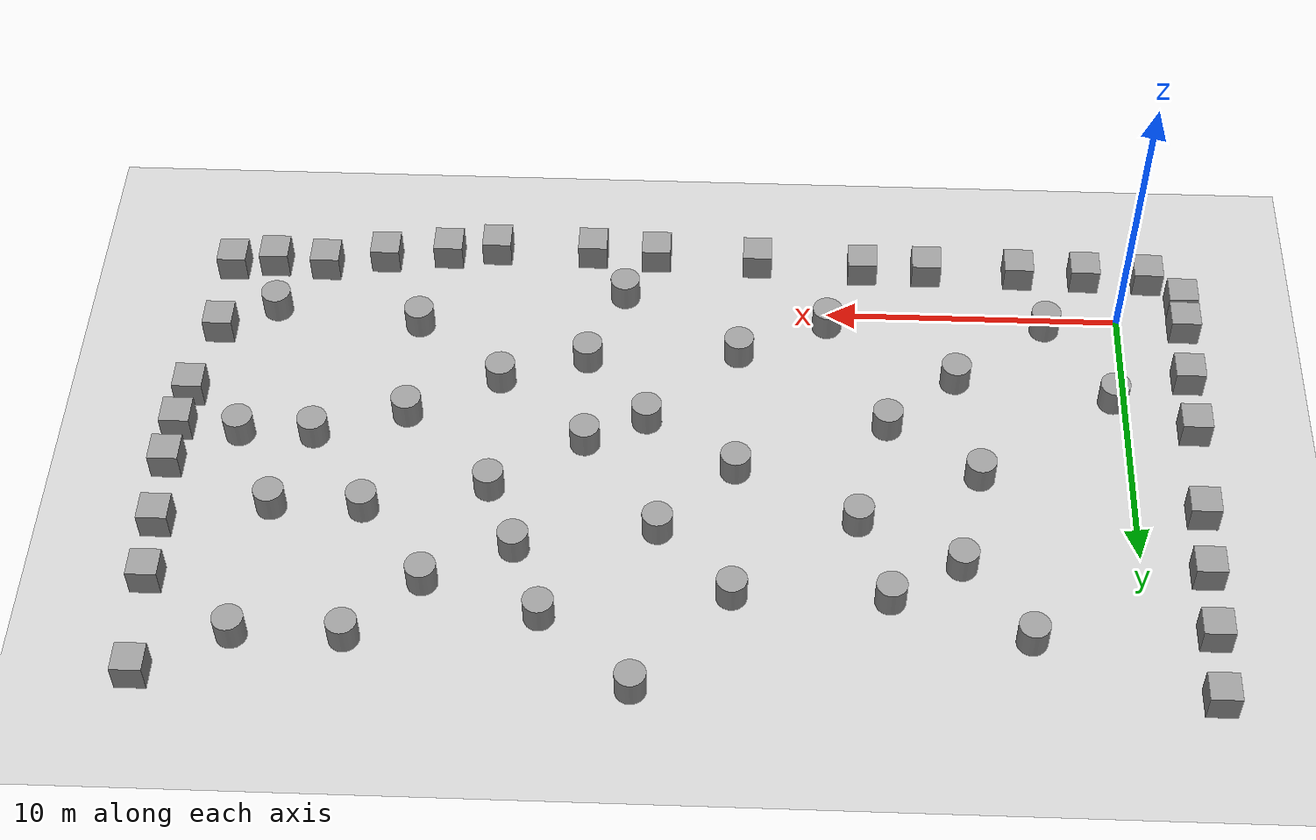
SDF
<sdf version="1.7">
 <world name="default">
  <model name="ground_plane">
   <static>1</static>
   <link name="link">
    <collision name="collision">
     <geometry><plane><normal>0 0 1</normal><size>100 100</size></plane></geometry>
     <surface><friction><ode><mu>100</mu><mu2>50</mu2></ode></friction></surface>
    </collision>
    <visual name="visual">
     <cast_shadows>0</cast_shadows>
     <geometry><plane><normal>0 0 1</normal><size>100 100</size></plane></geometry>
     <material>
      <script><uri>file://media/materials/scripts/gazebo.material</uri><name>Gazebo/Grey</name></script>
     </material>
    </visual>
   </link>
  </model>
  <model name="unit_box_0">
   <pose>-2.22865 0.326049 0.5 -0 -0 -0</pose>
   <link name="link">
    <inertial>
     <mass>1</mass>
     <inertia>
      <ixx>0.166667</ixx>
      <ixy>0</ixy>
      <ixz>0</ixz>
      <iyy>0.166667</iyy>
      <iyz>0</iyz>
      <izz>0.166667</izz>
     </inertia>
    </inertial>
    <collision name="collision"><geometry><box><size>1 1 1</size></box></geometry></collision>
    <visual name="visual">
     <geometry><box><size>1 1 1</size></box></geometry>
     <material>
      <script><name>Gazebo/Grey</name><uri>file://media/materials/scripts/gazebo.material</uri></script>
     </material>
    </visual>
   </link>
  </model>
  <model name="unit_box_0_clone_0">
   <pose>-2.16445 2.63677 0.5 0 -0 0</pose>
   <link name="link">
    <inertial>
     <mass>1</mass>
     <inertia>
      <ixx>0.166667</ixx>
      <ixy>0</ixy>
      <ixz>0</ixz>
      <iyy>0.166667</iyy>
      <iyz>0</iyz>
      <izz>0.166667</izz>
     </inertia>
    </inertial>
    <collision name="collision"><geometry><box><size>1 1 1</size></box></geometry></collision>
    <visual name="visual">
     <geometry><box><size>1 1 1</size></box></geometry>
     <material>
      <script><name>Gazebo/Grey</name><uri>file://media/materials/scripts/gazebo.material</uri></script>
     </material>
    </visual>
   </link>
  </model>
  <model name="unit_box_0_clone_2">
   <pose>-2.17584 4.83845 0.5 0 -0 0</pose>
   <link name="link">
    <inertial>
     <mass>1</mass>
     <inertia>
      <ixx>0.166667</ixx>
      <ixy>0</ixy>
      <ixz>0</ixz>
      <iyy>0.166667</iyy>
      <iyz>0</iyz>
      <izz>0.166667</izz>
     </inertia>
    </inertial>
    <collision name="collision"><geometry><box><size>1 1 1</size></box></geometry></collision>
    <visual name="visual">
     <geometry><box><size>1 1 1</size></box></geometry>
     <material>
      <script><name>Gazebo/Grey</name><uri>file://media/materials/scripts/gazebo.material</uri></script>
     </material>
    </visual>
   </link>
  </model>
  <model name="unit_box_0_clone_5">
   <pose>-2.11196 8.30155 0.5 0 -0 0</pose>
   <link name="link">
    <inertial>
     <mass>1</mass>
     <inertia>
      <ixx>0.166667</ixx>
      <ixy>0</ixy>
      <ixz>0</ixz>
      <iyy>0.166667</iyy>
      <iyz>0</iyz>
      <izz>0.166667</izz>
     </inertia>
    </inertial>
    <collision name="collision"><geometry><box><size>1 1 1</size></box></geometry></collision>
    <visual name="visual">
     <geometry><box><size>1 1 1</size></box></geometry>
     <material>
      <script><name>Gazebo/Grey</name><uri>file://media/materials/scripts/gazebo.material</uri></script>
     </material>
    </visual>
   </link>
  </model>
  <model name="unit_box_0_clone_7">
   <pose>-2.03622 10.6755 0.5 0 -0 0</pose>
   <link name="link">
    <inertial>
     <mass>1</mass>
     <inertia>
      <ixx>0.166667</ixx>
      <ixy>0</ixy>
      <ixz>0</ixz>
      <iyy>0.166667</iyy>
      <iyz>0</iyz>
      <izz>0.166667</izz>
     </inertia>
    </inertial>
    <collision name="collision"><geometry><box><size>1 1 1</size></box></geometry></collision>
    <visual name="visual">
     <geometry><box><size>1 1 1</size></box></geometry>
     <material>
      <script><name>Gazebo/Grey</name><uri>file://media/materials/scripts/gazebo.material</uri></script>
     </material>
    </visual>
   </link>
  </model>
  <model name="unit_box_0_clone_9">
   <pose>-2.03088 13.0171 0.5 0 -0 0</pose>
   <link name="link">
    <inertial>
     <mass>1</mass>
     <inertia>
      <ixx>0.166667</ixx>
      <ixy>0</ixy>
      <ixz>0</ixz>
      <iyy>0.166667</iyy>
      <iyz>0</iyz>
      <izz>0.166667</izz>
     </inertia>
    </inertial>
    <collision name="collision"><geometry><box><size>1 1 1</size></box></geometry></collision>
    <visual name="visual">
     <geometry><box><size>1 1 1</size></box></geometry>
     <material>
      <script><name>Gazebo/Grey</name><uri>file://media/materials/scripts/gazebo.material</uri></script>
     </material>
    </visual>
   </link>
  </model>
  <model name="unit_box_0_clone_11">
   <pose>-1.97332 15.4004 0.5 0 -0 0</pose>
   <link name="link">
    <inertial>
     <mass>1</mass>
     <inertia>
      <ixx>0.166667</ixx>
      <ixy>0</ixy>
      <ixz>0</ixz>
      <iyy>0.166667</iyy>
      <iyz>0</iyz>
      <izz>0.166667</izz>
     </inertia>
    </inertial>
    <collision name="collision"><geometry><box><size>1 1 1</size></box></geometry></collision>
    <visual name="visual">
     <geometry><box><size>1 1 1</size></box></geometry>
     <material>
      <script><name>Gazebo/Grey</name><uri>file://media/materials/scripts/gazebo.material</uri></script>
     </material>
    </visual>
   </link>
  </model>
  <model name="unit_box_0_clone_22">
   <pose>-2.24379 -0.772102 0.5 0 -0 0</pose>
   <link name="link">
    <inertial>
     <mass>1</mass>
     <inertia>
      <ixx>0.166667</ixx>
      <ixy>0</ixy>
      <ixz>0</ixz>
      <iyy>0.166667</iyy>
      <iyz>0</iyz>
      <izz>0.166667</izz>
     </inertia>
    </inertial>
    <collision name="collision"><geometry><box><size>1 1 1</size></box></geometry></collision>
    <visual name="visual">
     <geometry><box><size>1 1 1</size></box></geometry>
     <material>
      <script><name>Gazebo/Grey</name><uri>file://media/materials/scripts/gazebo.material</uri></script>
     </material>
    </visual>
   </link>
  </model>
  <model name="unit_box_0_clone_23">
   <pose>-1.13961 -1.85818 0.5 0 -0 0</pose>
   <link name="link">
    <inertial>
     <mass>1</mass>
     <inertia>
      <ixx>0.166667</ixx>
      <ixy>0</ixy>
      <ixz>0</ixz>
      <iyy>0.166667</iyy>
      <iyz>0</iyz>
      <izz>0.166667</izz>
     </inertia>
    </inertial>
    <collision name="collision"><geometry><box><size>1 1 1</size></box></geometry></collision>
    <visual name="visual">
     <geometry><box><size>1 1 1</size></box></geometry>
     <material>
      <script><name>Gazebo/Grey</name><uri>file://media/materials/scripts/gazebo.material</uri></script>
     </material>
    </visual>
   </link>
  </model>
  <model name="unit_box_0_clone_25">
   <pose>1.04752 -1.90962 0.5 0 -0 0</pose>
   <link name="link">
    <inertial>
     <mass>1</mass>
     <inertia>
      <ixx>0.166667</ixx>
      <ixy>0</ixy>
      <ixz>0</ixz>
      <iyy>0.166667</iyy>
      <iyz>0</iyz>
      <izz>0.166667</izz>
     </inertia>
    </inertial>
    <collision name="collision"><geometry><box><size>1 1 1</size></box></geometry></collision>
    <visual name="visual">
     <geometry><box><size>1 1 1</size></box></geometry>
     <material>
      <script><name>Gazebo/Grey</name><uri>file://media/materials/scripts/gazebo.material</uri></script>
     </material>
    </visual>
   </link>
  </model>
  <model name="unit_box_0_clone_27">
   <pose>3.34569 -1.94663 0.5 0 -0 0</pose>
   <link name="link">
    <inertial>
     <mass>1</mass>
     <inertia>
      <ixx>0.166667</ixx>
      <ixy>0</ixy>
      <ixz>0</ixz>
      <iyy>0.166667</iyy>
      <iyz>0</iyz>
      <izz>0.166667</izz>
     </inertia>
    </inertial>
    <collision name="collision"><geometry><box><size>1 1 1</size></box></geometry></collision>
    <visual name="visual">
     <geometry><box><size>1 1 1</size></box></geometry>
     <material>
      <script><name>Gazebo/Grey</name><uri>file://media/materials/scripts/gazebo.material</uri></script>
     </material>
    </visual>
   </link>
  </model>
  <model name="unit_box_0_clone_27_clone_1">
   <pose>6.55096 -1.97487 0.5 0 -0 0</pose>
   <link name="link">
    <inertial>
     <mass>1</mass>
     <inertia>
      <ixx>0.166667</ixx>
      <ixy>0</ixy>
      <ixz>0</ixz>
      <iyy>0.166667</iyy>
      <iyz>0</iyz>
      <izz>0.166667</izz>
     </inertia>
    </inertial>
    <collision name="collision"><geometry><box><size>1 1 1</size></box></geometry></collision>
    <visual name="visual">
     <geometry><box><size>1 1 1</size></box></geometry>
     <material>
      <script><name>Gazebo/Grey</name><uri>file://media/materials/scripts/gazebo.material</uri></script>
     </material>
    </visual>
   </link>
  </model>
  <model name="unit_box_0_clone_27_clone_3">
   <pose>8.77506 -1.97155 0.5 0 -0 0</pose>
   <link name="link">
    <inertial>
     <mass>1</mass>
     <inertia>
      <ixx>0.166667</ixx>
      <ixy>0</ixy>
      <ixz>0</ixz>
      <iyy>0.166667</iyy>
      <iyz>0</iyz>
      <izz>0.166667</izz>
     </inertia>
    </inertial>
    <collision name="collision"><geometry><box><size>1 1 1</size></box></geometry></collision>
    <visual name="visual">
     <geometry><box><size>1 1 1</size></box></geometry>
     <material>
      <script><name>Gazebo/Grey</name><uri>file://media/materials/scripts/gazebo.material</uri></script>
     </material>
    </visual>
   </link>
  </model>
  <model name="unit_box_0_clone_27_clone_6">
   <pose>12.4447 -2.18446 0.5 0 -0 0</pose>
   <link name="link">
    <inertial>
     <mass>1</mass>
     <inertia>
      <ixx>0.166667</ixx>
      <ixy>0</ixy>
      <ixz>0</ixz>
      <iyy>0.166667</iyy>
      <iyz>0</iyz>
      <izz>0.166667</izz>
     </inertia>
    </inertial>
    <collision name="collision"><geometry><box><size>1 1 1</size></box></geometry></collision>
    <visual name="visual">
     <geometry><box><size>1 1 1</size></box></geometry>
     <material>
      <script><name>Gazebo/Grey</name><uri>file://media/materials/scripts/gazebo.material</uri></script>
     </material>
    </visual>
   </link>
  </model>
  <model name="unit_box_0_clone_27_clone_9">
   <pose>15.99 -2.33679 0.5 0 -0 0</pose>
   <link name="link">
    <inertial>
     <mass>1</mass>
     <inertia>
      <ixx>0.166667</ixx>
      <ixy>0</ixy>
      <ixz>0</ixz>
      <iyy>0.166667</iyy>
      <iyz>0</iyz>
      <izz>0.166667</izz>
     </inertia>
    </inertial>
    <collision name="collision"><geometry><box><size>1 1 1</size></box></geometry></collision>
    <visual name="visual">
     <geometry><box><size>1 1 1</size></box></geometry>
     <material>
      <script><name>Gazebo/Grey</name><uri>file://media/materials/scripts/gazebo.material</uri></script>
     </material>
    </visual>
   </link>
  </model>
  <model name="unit_box_0_clone_27_clone_11">
   <pose>18.2224 -2.44772 0.5 0 -0 0</pose>
   <link name="link">
    <inertial>
     <mass>1</mass>
     <inertia>
      <ixx>0.166667</ixx>
      <ixy>0</ixy>
      <ixz>0</ixz>
      <iyy>0.166667</iyy>
      <iyz>0</iyz>
      <izz>0.166667</izz>
     </inertia>
    </inertial>
    <collision name="collision"><geometry><box><size>1 1 1</size></box></geometry></collision>
    <visual name="visual">
     <geometry><box><size>1 1 1</size></box></geometry>
     <material>
      <script><name>Gazebo/Grey</name><uri>file://media/materials/scripts/gazebo.material</uri></script>
     </material>
    </visual>
   </link>
  </model>
  <model name="unit_box_11">
   <pose>21.5967 -2.48668 0.5 -0 -0 -0</pose>
   <link name="link">
    <inertial>
     <mass>1</mass>
     <inertia>
      <ixx>0.166667</ixx>
      <ixy>0</ixy>
      <ixz>0</ixz>
      <iyy>0.166667</iyy>
      <iyz>0</iyz>
      <izz>0.166667</izz>
     </inertia>
    </inertial>
    <collision name="collision"><geometry><box><size>1 1 1</size></box></geometry></collision>
    <visual name="visual">
     <geometry><box><size>1 1 1</size></box></geometry>
     <material>
      <script><name>Gazebo/Grey</name><uri>file://media/materials/scripts/gazebo.material</uri></script>
     </material>
    </visual>
   </link>
  </model>
  <model name="unit_box_12">
   <pose>23.2882 -2.25784 0.5 -0 -0 -0</pose>
   <link name="link">
    <inertial>
     <mass>1</mass>
     <inertia>
      <ixx>0.166667</ixx>
      <ixy>0</ixy>
      <ixz>0</ixz>
      <iyy>0.166667</iyy>
      <iyz>0</iyz>
      <izz>0.166667</izz>
     </inertia>
    </inertial>
    <collision name="collision"><geometry><box><size>1 1 1</size></box></geometry></collision>
    <visual name="visual">
     <geometry><box><size>1 1 1</size></box></geometry>
     <material>
      <script><name>Gazebo/Grey</name><uri>file://media/materials/scripts/gazebo.material</uri></script>
     </material>
    </visual>
   </link>
  </model>
  <model name="unit_box_13">
   <pose>30.7878 -1.46301 0.5 0 -0 0</pose>
   <link name="link">
    <inertial>
     <mass>1</mass>
     <inertia>
      <ixx>0.166667</ixx>
      <ixy>0</ixy>
      <ixz>0</ixz>
      <iyy>0.166667</iyy>
      <iyz>0</iyz>
      <izz>0.166667</izz>
     </inertia>
    </inertial>
    <collision name="collision"><geometry><box><size>1 1 1</size></box></geometry></collision>
    <visual name="visual">
     <geometry><box><size>1 1 1</size></box></geometry>
     <material>
      <script><name>Gazebo/Grey</name><uri>file://media/materials/scripts/gazebo.material</uri></script>
     </material>
    </visual>
   </link>
  </model>
  <model name="unit_box_14">
   <pose>30.8153 1.4746 0.5 0 -0 0</pose>
   <link name="link">
    <inertial>
     <mass>1</mass>
     <inertia>
      <ixx>0.166667</ixx>
      <ixy>0</ixy>
      <ixz>0</ixz>
      <iyy>0.166667</iyy>
      <iyz>0</iyz>
      <izz>0.166667</izz>
     </inertia>
    </inertial>
    <collision name="collision"><geometry><box><size>1 1 1</size></box></geometry></collision>
    <visual name="visual">
     <geometry><box><size>1 1 1</size></box></geometry>
     <material>
      <script><name>Gazebo/Grey</name><uri>file://media/materials/scripts/gazebo.material</uri></script>
     </material>
    </visual>
   </link>
  </model>
  <model name="unit_box_15">
   <pose>31.3664 4.30408 0.5 0 -0 0</pose>
   <link name="link">
    <inertial>
     <mass>1</mass>
     <inertia>
      <ixx>0.166667</ixx>
      <ixy>0</ixy>
      <ixz>0</ixz>
      <iyy>0.166667</iyy>
      <iyz>0</iyz>
      <izz>0.166667</izz>
     </inertia>
    </inertial>
    <collision name="collision"><geometry><box><size>1 1 1</size></box></geometry></collision>
    <visual name="visual">
     <geometry><box><size>1 1 1</size></box></geometry>
     <material>
      <script><name>Gazebo/Grey</name><uri>file://media/materials/scripts/gazebo.material</uri></script>
     </material>
    </visual>
   </link>
  </model>
  <model name="unit_box_16">
   <pose>31.6348 7.37884 0.5 0 -0 0</pose>
   <link name="link">
    <inertial>
     <mass>1</mass>
     <inertia>
      <ixx>0.166667</ixx>
      <ixy>0</ixy>
      <ixz>0</ixz>
      <iyy>0.166667</iyy>
      <iyz>0</iyz>
      <izz>0.166667</izz>
     </inertia>
    </inertial>
    <collision name="collision"><geometry><box><size>1 1 1</size></box></geometry></collision>
    <visual name="visual">
     <geometry><box><size>1 1 1</size></box></geometry>
     <material>
      <script><name>Gazebo/Grey</name><uri>file://media/materials/scripts/gazebo.material</uri></script>
     </material>
    </visual>
   </link>
  </model>
  <model name="unit_box_16_clone">
   <pose>31.5578 9.79822 0.5 -0 -0 -0</pose>
   <link name="link">
    <inertial>
     <mass>1</mass>
     <inertia>
      <ixx>0.166667</ixx>
      <ixy>0</ixy>
      <ixz>0</ixz>
      <iyy>0.166667</iyy>
      <iyz>0</iyz>
      <izz>0.166667</izz>
     </inertia>
    </inertial>
    <collision name="collision"><geometry><box><size>1 1 1</size></box></geometry></collision>
    <visual name="visual">
     <geometry><box><size>1 1 1</size></box></geometry>
     <material>
      <script><name>Gazebo/Grey</name><uri>file://media/materials/scripts/gazebo.material</uri></script>
     </material>
    </visual>
   </link>
  </model>
  <model name="unit_box_16_clone_0">
   <pose>31.4869 12 0.5 -0 -0 -0</pose>
   <link name="link">
    <inertial>
     <mass>1</mass>
     <inertia>
      <ixx>0.166667</ixx>
      <ixy>0</ixy>
      <ixz>0</ixz>
      <iyy>0.166667</iyy>
      <iyz>0</iyz>
      <izz>0.166667</izz>
     </inertia>
    </inertial>
    <collision name="collision"><geometry><box><size>1 1 1</size></box></geometry></collision>
    <visual name="visual">
     <geometry><box><size>1 1 1</size></box></geometry>
     <material>
      <script><name>Gazebo/Grey</name><uri>file://media/materials/scripts/gazebo.material</uri></script>
     </material>
    </visual>
   </link>
  </model>
  <model name="unit_box_16_clone_1">
   <pose>31.3106 15.5427 0.5 -0 -0 -0</pose>
   <link name="link">
    <inertial>
     <mass>1</mass>
     <inertia>
      <ixx>0.166667</ixx>
      <ixy>0</ixy>
      <ixz>0</ixz>
      <iyy>0.166667</iyy>
      <iyz>0</iyz>
      <izz>0.166667</izz>
     </inertia>
    </inertial>
    <collision name="collision"><geometry><box><size>1 1 1</size></box></geometry></collision>
    <visual name="visual">
     <geometry><box><size>1 1 1</size></box></geometry>
     <material>
      <script><name>Gazebo/Grey</name><uri>file://media/materials/scripts/gazebo.material</uri></script>
     </material>
    </visual>
   </link>
  </model>
  <model name="unit_box_16_clone_15">
   <pose>31.537 5.80203 0.5 0 -0 0</pose>
   <link name="link">
    <inertial>
     <mass>1</mass>
     <inertia>
      <ixx>0.166667</ixx>
      <ixy>0</ixy>
      <ixz>0</ixz>
      <iyy>0.166667</iyy>
      <iyz>0</iyz>
      <izz>0.166667</izz>
     </inertia>
    </inertial>
    <collision name="collision"><geometry><box><size>1 1 1</size></box></geometry></collision>
    <visual name="visual">
     <geometry><box><size>1 1 1</size></box></geometry>
     <material>
      <script><name>Gazebo/Grey</name><uri>file://media/materials/scripts/gazebo.material</uri></script>
     </material>
    </visual>
   </link>
  </model>
  <model name="unit_box_16_clone_16">
   <pose>29.3387 -1.67494 0.5 -0 -0 -0</pose>
   <link name="link">
    <inertial>
     <mass>1</mass>
     <inertia>
      <ixx>0.166667</ixx>
      <ixy>0</ixy>
      <ixz>0</ixz>
      <iyy>0.166667</iyy>
      <iyz>0</iyz>
      <izz>0.166667</izz>
     </inertia>
    </inertial>
    <collision name="collision"><geometry><box><size>1 1 1</size></box></geometry></collision>
    <visual name="visual">
     <geometry><box><size>1 1 1</size></box></geometry>
     <material>
      <script><name>Gazebo/Grey</name><uri>file://media/materials/scripts/gazebo.material</uri></script>
     </material>
    </visual>
   </link>
  </model>
  <model name="unit_box_16_clone_17">
   <pose>27.5377 -1.56251 0.5 0 -0 0</pose>
   <link name="link">
    <inertial>
     <mass>1</mass>
     <inertia>
      <ixx>0.166667</ixx>
      <ixy>0</ixy>
      <ixz>0</ixz>
      <iyy>0.166667</iyy>
      <iyz>0</iyz>
      <izz>0.166667</izz>
     </inertia>
    </inertial>
    <collision name="collision"><geometry><box><size>1 1 1</size></box></geometry></collision>
    <visual name="visual">
     <geometry><box><size>1 1 1</size></box></geometry>
     <material>
      <script><name>Gazebo/Grey</name><uri>file://media/materials/scripts/gazebo.material</uri></script>
     </material>
    </visual>
   </link>
  </model>
  <model name="unit_box_16_clone_18">
   <pose>25.4815 -1.99999 0.5 0 -0 0</pose>
   <link name="link">
    <inertial>
     <mass>1</mass>
     <inertia>
      <ixx>0.166667</ixx>
      <ixy>0</ixy>
      <ixz>0</ixz>
      <iyy>0.166667</iyy>
      <iyz>0</iyz>
      <izz>0.166667</izz>
     </inertia>
    </inertial>
    <collision name="collision"><geometry><box><size>1 1 1</size></box></geometry></collision>
    <visual name="visual">
     <geometry><box><size>1 1 1</size></box></geometry>
     <material>
      <script><name>Gazebo/Grey</name><uri>file://media/materials/scripts/gazebo.material</uri></script>
     </material>
    </visual>
   </link>
  </model>
  <model name="unit_cylinder">
   <pose>5.67696 2.91257 0.499998 3e-06 -4e-06 0</pose>
   <link name="link">
    <inertial>
     <mass>1</mass>
     <inertia><ixx>0.145833</ixx><ixy>0</ixy><ixz>0</ixz><iyy>0.145833</iyy><iyz>0</iyz><izz>0.125</izz></inertia>
    </inertial>
    <collision name="collision">
     <geometry><cylinder><radius>0.5</radius><length>1</length></cylinder></geometry>
    </collision>
    <visual name="visual">
     <geometry><cylinder><radius>0.5</radius><length>1</length></cylinder></geometry>
     <material>
      <script><name>Gazebo/Grey</name><uri>file://media/materials/scripts/gazebo.material</uri></script>
     </material>
    </visual>
   </link>
  </model>
  <model name="unit_cylinder_clone">
   <pose>5 7 0.499992 -3e-06 4e-06 0</pose>
   <link name="link">
    <inertial>
     <mass>1</mass>
     <inertia><ixx>0.145833</ixx><ixy>0</ixy><ixz>0</ixz><iyy>0.145833</iyy><iyz>0</iyz><izz>0.125</izz></inertia>
    </inertial>
    <collision name="collision">
     <geometry><cylinder><radius>0.5</radius><length>1</length></cylinder></geometry>
    </collision>
    <visual name="visual">
     <geometry><cylinder><radius>0.5</radius><length>1</length></cylinder></geometry>
     <material>
      <script><name>Gazebo/Grey</name><uri>file://media/materials/scripts/gazebo.material</uri></script>
     </material>
    </visual>
   </link>
  </model>
  <model name="unit_cylinder_clone_0">
   <pose>9 9 0.499992 -3e-06 4e-06 0</pose>
   <link name="link">
    <inertial>
     <mass>1</mass>
     <inertia><ixx>0.145833</ixx><ixy>0</ixy><ixz>0</ixz><iyy>0.145833</iyy><iyz>0</iyz><izz>0.125</izz></inertia>
    </inertial>
    <collision name="collision">
     <geometry><cylinder><radius>0.5</radius><length>1</length></cylinder></geometry>
    </collision>
    <visual name="visual">
     <geometry><cylinder><radius>0.5</radius><length>1</length></cylinder></geometry>
     <material>
      <script><name>Gazebo/Grey</name><uri>file://media/materials/scripts/gazebo.material</uri></script>
     </material>
    </visual>
   </link>
  </model>
  <model name="unit_cylinder_clone_1">
   <pose>8 12 0.499992 -3e-06 4e-06 0</pose>
   <link name="link">
    <inertial>
     <mass>1</mass>
     <inertia><ixx>0.145833</ixx><ixy>0</ixy><ixz>0</ixz><iyy>0.145833</iyy><iyz>0</iyz><izz>0.125</izz></inertia>
    </inertial>
    <collision name="collision">
     <geometry><cylinder><radius>0.5</radius><length>1</length></cylinder></geometry>
    </collision>
    <visual name="visual">
     <geometry><cylinder><radius>0.5</radius><length>1</length></cylinder></geometry>
     <material>
      <script><name>Gazebo/Grey</name><uri>file://media/materials/scripts/gazebo.material</uri></script>
     </material>
    </visual>
   </link>
  </model>
  <model name="unit_cylinder_clone_2">
   <pose>8 5 0.499998 3e-06 -4e-06 0</pose>
   <link name="link">
    <inertial>
     <mass>1</mass>
     <inertia><ixx>0.145833</ixx><ixy>0</ixy><ixz>0</ixz><iyy>0.145833</iyy><iyz>0</iyz><izz>0.125</izz></inertia>
    </inertial>
    <collision name="collision">
     <geometry><cylinder><radius>0.5</radius><length>1</length></cylinder></geometry>
    </collision>
    <visual name="visual">
     <geometry><cylinder><radius>0.5</radius><length>1</length></cylinder></geometry>
     <material>
      <script><name>Gazebo/Grey</name><uri>file://media/materials/scripts/gazebo.material</uri></script>
     </material>
    </visual>
   </link>
  </model>
  <model name="unit_cylinder_clone_3">
   <pose>13 2 0.499998 3e-06 -4e-06 0</pose>
   <link name="link">
    <inertial>
     <mass>1</mass>
     <inertia><ixx>0.145833</ixx><ixy>0</ixy><ixz>0</ixz><iyy>0.145833</iyy><iyz>0</iyz><izz>0.125</izz></inertia>
    </inertial>
    <collision name="collision">
     <geometry><cylinder><radius>0.5</radius><length>1</length></cylinder></geometry>
    </collision>
    <visual name="visual">
     <geometry><cylinder><radius>0.5</radius><length>1</length></cylinder></geometry>
     <material>
      <script><name>Gazebo/Grey</name><uri>file://media/materials/scripts/gazebo.material</uri></script>
     </material>
    </visual>
   </link>
  </model>
  <model name="unit_cylinder_clone_4">
   <pose>16 5 0.499992 -3e-06 4e-06 0</pose>
   <link name="link">
    <inertial>
     <mass>1</mass>
     <inertia><ixx>0.145833</ixx><ixy>0</ixy><ixz>0</ixz><iyy>0.145833</iyy><iyz>0</iyz><izz>0.125</izz></inertia>
    </inertial>
    <collision name="collision">
     <geometry><cylinder><radius>0.5</radius><length>1</length></cylinder></geometry>
    </collision>
    <visual name="visual">
     <geometry><cylinder><radius>0.5</radius><length>1</length></cylinder></geometry>
     <material>
      <script><name>Gazebo/Grey</name><uri>file://media/materials/scripts/gazebo.material</uri></script>
     </material>
    </visual>
   </link>
  </model>
  <model name="unit_cylinder_clone_5">
   <pose>13 7 0.499998 3e-06 -4e-06 0</pose>
   <link name="link">
    <inertial>
     <mass>1</mass>
     <inertia><ixx>0.145833</ixx><ixy>0</ixy><ixz>0</ixz><iyy>0.145833</iyy><iyz>0</iyz><izz>0.125</izz></inertia>
    </inertial>
    <collision name="collision">
     <geometry><cylinder><radius>0.5</radius><length>1</length></cylinder></geometry>
    </collision>
    <visual name="visual">
     <geometry><cylinder><radius>0.5</radius><length>1</length></cylinder></geometry>
     <material>
      <script><name>Gazebo/Grey</name><uri>file://media/materials/scripts/gazebo.material</uri></script>
     </material>
    </visual>
   </link>
  </model>
  <model name="unit_cylinder_clone_6">
   <pose>15.4412 9.53473 0.499998 3e-06 -4e-06 0</pose>
   <link name="link">
    <inertial>
     <mass>1</mass>
     <inertia><ixx>0.145833</ixx><ixy>0</ixy><ixz>0</ixz><iyy>0.145833</iyy><iyz>0</iyz><izz>0.125</izz></inertia>
    </inertial>
    <collision name="collision">
     <geometry><cylinder><radius>0.5</radius><length>1</length></cylinder></geometry>
    </collision>
    <visual name="visual">
     <geometry><cylinder><radius>0.5</radius><length>1</length></cylinder></geometry>
     <material>
      <script><name>Gazebo/Grey</name><uri>file://media/materials/scripts/gazebo.material</uri></script>
     </material>
    </visual>
   </link>
  </model>
  <model name="unit_cylinder_clone_7">
   <pose>13 12 0.499998 3e-06 -4e-06 0</pose>
   <link name="link">
    <inertial>
     <mass>1</mass>
     <inertia><ixx>0.145833</ixx><ixy>0</ixy><ixz>0</ixz><iyy>0.145833</iyy><iyz>0</iyz><izz>0.125</izz></inertia>
    </inertial>
    <collision name="collision">
     <geometry><cylinder><radius>0.5</radius><length>1</length></cylinder></geometry>
    </collision>
    <visual name="visual">
     <geometry><cylinder><radius>0.5</radius><length>1</length></cylinder></geometry>
     <material>
      <script><name>Gazebo/Grey</name><uri>file://media/materials/scripts/gazebo.material</uri></script>
     </material>
    </visual>
   </link>
  </model>
  <model name="unit_cylinder_clone_8">
   <pose>16 15.5848 0.499998 3e-06 -4e-06 0</pose>
   <link name="link">
    <inertial>
     <mass>1</mass>
     <inertia><ixx>0.145833</ixx><ixy>0</ixy><ixz>0</ixz><iyy>0.145833</iyy><iyz>0</iyz><izz>0.125</izz></inertia>
    </inertial>
    <collision name="collision">
     <geometry><cylinder><radius>0.5</radius><length>1</length></cylinder></geometry>
    </collision>
    <visual name="visual">
     <geometry><cylinder><radius>0.5</radius><length>1</length></cylinder></geometry>
     <material>
      <script><name>Gazebo/Grey</name><uri>file://media/materials/scripts/gazebo.material</uri></script>
     </material>
    </visual>
   </link>
  </model>
  <model name="unit_cylinder_clone_9">
   <pose>19 13 0.499998 3e-06 -4e-06 0</pose>
   <link name="link">
    <inertial>
     <mass>1</mass>
     <inertia><ixx>0.145833</ixx><ixy>0</ixy><ixz>0</ixz><iyy>0.145833</iyy><iyz>0</iyz><izz>0.125</izz></inertia>
    </inertial>
    <collision name="collision">
     <geometry><cylinder><radius>0.5</radius><length>1</length></cylinder></geometry>
    </collision>
    <visual name="visual">
     <geometry><cylinder><radius>0.5</radius><length>1</length></cylinder></geometry>
     <material>
      <script><name>Gazebo/Grey</name><uri>file://media/materials/scripts/gazebo.material</uri></script>
     </material>
    </visual>
   </link>
  </model>
  <model name="unit_cylinder_clone_10">
   <pose>21 8 0.499992 -3e-06 4e-06 0</pose>
   <link name="link">
    <inertial>
     <mass>1</mass>
     <inertia><ixx>0.145833</ixx><ixy>0</ixy><ixz>0</ixz><iyy>0.145833</iyy><iyz>0</iyz><izz>0.125</izz></inertia>
    </inertial>
    <collision name="collision">
     <geometry><cylinder><radius>0.5</radius><length>1</length></cylinder></geometry>
    </collision>
    <visual name="visual">
     <geometry><cylinder><radius>0.5</radius><length>1</length></cylinder></geometry>
     <material>
      <script><name>Gazebo/Grey</name><uri>file://media/materials/scripts/gazebo.material</uri></script>
     </material>
    </visual>
   </link>
  </model>
  <model name="unit_cylinder_clone_11">
   <pose>21 3.40775 0.499992 -3e-06 4e-06 0</pose>
   <link name="link">
    <inertial>
     <mass>1</mass>
     <inertia><ixx>0.145833</ixx><ixy>0</ixy><ixz>0</ixz><iyy>0.145833</iyy><iyz>0</iyz><izz>0.125</izz></inertia>
    </inertial>
    <collision name="collision">
     <geometry><cylinder><radius>0.5</radius><length>1</length></cylinder></geometry>
    </collision>
    <visual name="visual">
     <geometry><cylinder><radius>0.5</radius><length>1</length></cylinder></geometry>
     <material>
      <script><name>Gazebo/Grey</name><uri>file://media/materials/scripts/gazebo.material</uri></script>
     </material>
    </visual>
   </link>
  </model>
  <model name="unit_cylinder_clone_12">
   <pose>18 6 0.499992 -3e-06 4e-06 0</pose>
   <link name="link">
    <inertial>
     <mass>1</mass>
     <inertia><ixx>0.145833</ixx><ixy>0</ixy><ixz>0</ixz><iyy>0.145833</iyy><iyz>0</iyz><izz>0.125</izz></inertia>
    </inertial>
    <collision name="collision">
     <geometry><cylinder><radius>0.5</radius><length>1</length></cylinder></geometry>
    </collision>
    <visual name="visual">
     <geometry><cylinder><radius>0.5</radius><length>1</length></cylinder></geometry>
     <material>
      <script><name>Gazebo/Grey</name><uri>file://media/materials/scripts/gazebo.material</uri></script>
     </material>
    </visual>
   </link>
  </model>
  <model name="unit_cylinder_clone_13">
   <pose>20 10.4061 0.499992 -3e-06 4e-06 0</pose>
   <link name="link">
    <inertial>
     <mass>1</mass>
     <inertia><ixx>0.145833</ixx><ixy>0</ixy><ixz>0</ixz><iyy>0.145833</iyy><iyz>0</iyz><izz>0.125</izz></inertia>
    </inertial>
    <collision name="collision">
     <geometry><cylinder><radius>0.5</radius><length>1</length></cylinder></geometry>
    </collision>
    <visual name="visual">
     <geometry><cylinder><radius>0.5</radius><length>1</length></cylinder></geometry>
     <material>
      <script><name>Gazebo/Grey</name><uri>file://media/materials/scripts/gazebo.material</uri></script>
     </material>
    </visual>
   </link>
  </model>
  <model name="unit_cylinder_clone_14">
   <pose>25 14 0.499998 3e-06 -4e-06 0</pose>
   <link name="link">
    <inertial>
     <mass>1</mass>
     <inertia><ixx>0.145833</ixx><ixy>0</ixy><ixz>0</ixz><iyy>0.145833</iyy><iyz>0</iyz><izz>0.125</izz></inertia>
    </inertial>
    <collision name="collision">
     <geometry><cylinder><radius>0.5</radius><length>1</length></cylinder></geometry>
    </collision>
    <visual name="visual">
     <geometry><cylinder><radius>0.5</radius><length>1</length></cylinder></geometry>
     <material>
      <script><name>Gazebo/Grey</name><uri>file://media/materials/scripts/gazebo.material</uri></script>
     </material>
    </visual>
   </link>
  </model>
  <model name="unit_cylinder_clone_16">
   <pose>28.5156 14 0.499998 3e-06 -4e-06 0</pose>
   <link name="link">
    <inertial>
     <mass>1</mass>
     <inertia><ixx>0.145833</ixx><ixy>0</ixy><ixz>0</ixz><iyy>0.145833</iyy><iyz>0</iyz><izz>0.125</izz></inertia>
    </inertial>
    <collision name="collision">
     <geometry><cylinder><radius>0.5</radius><length>1</length></cylinder></geometry>
    </collision>
    <visual name="visual">
     <geometry><cylinder><radius>0.5</radius><length>1</length></cylinder></geometry>
     <material>
      <script><name>Gazebo/Grey</name><uri>file://media/materials/scripts/gazebo.material</uri></script>
     </material>
    </visual>
   </link>
  </model>
  <model name="unit_cylinder_clone_17">
   <pose>28 9 0.499998 3e-06 -4e-06 0</pose>
   <link name="link">
    <inertial>
     <mass>1</mass>
     <inertia><ixx>0.145833</ixx><ixy>0</ixy><ixz>0</ixz><iyy>0.145833</iyy><iyz>0</iyz><izz>0.125</izz></inertia>
    </inertial>
    <collision name="collision">
     <geometry><cylinder><radius>0.5</radius><length>1</length></cylinder></geometry>
    </collision>
    <visual name="visual">
     <geometry><cylinder><radius>0.5</radius><length>1</length></cylinder></geometry>
     <material>
      <script><name>Gazebo/Grey</name><uri>file://media/materials/scripts/gazebo.material</uri></script>
     </material>
    </visual>
   </link>
  </model>
  <model name="unit_cylinder_clone_18">
   <pose>25 9 0.499992 -3e-06 4e-06 0</pose>
   <link name="link">
    <inertial>
     <mass>1</mass>
     <inertia><ixx>0.145833</ixx><ixy>0</ixy><ixz>0</ixz><iyy>0.145833</iyy><iyz>0</iyz><izz>0.125</izz></inertia>
    </inertial>
    <collision name="collision">
     <geometry><cylinder><radius>0.5</radius><length>1</length></cylinder></geometry>
    </collision>
    <visual name="visual">
     <geometry><cylinder><radius>0.5</radius><length>1</length></cylinder></geometry>
     <material>
      <script><name>Gazebo/Grey</name><uri>file://media/materials/scripts/gazebo.material</uri></script>
     </material>
    </visual>
   </link>
  </model>
  <model name="unit_cylinder_clone_19">
   <pose>24 5 0.499998 3e-06 -4e-06 0</pose>
   <link name="link">
    <inertial>
     <mass>1</mass>
     <inertia><ixx>0.145833</ixx><ixy>0</ixy><ixz>0</ixz><iyy>0.145833</iyy><iyz>0</iyz><izz>0.125</izz></inertia>
    </inertial>
    <collision name="collision">
     <geometry><cylinder><radius>0.5</radius><length>1</length></cylinder></geometry>
    </collision>
    <visual name="visual">
     <geometry><cylinder><radius>0.5</radius><length>1</length></cylinder></geometry>
     <material>
      <script><name>Gazebo/Grey</name><uri>file://media/materials/scripts/gazebo.material</uri></script>
     </material>
    </visual>
   </link>
  </model>
  <model name="unit_cylinder_clone_20">
   <pose>24 1 0.499992 -3e-06 4e-06 0</pose>
   <link name="link">
    <inertial>
     <mass>1</mass>
     <inertia><ixx>0.145833</ixx><ixy>0</ixy><ixz>0</ixz><iyy>0.145833</iyy><iyz>0</iyz><izz>0.125</izz></inertia>
    </inertial>
    <collision name="collision">
     <geometry><cylinder><radius>0.5</radius><length>1</length></cylinder></geometry>
    </collision>
    <visual name="visual">
     <geometry><cylinder><radius>0.5</radius><length>1</length></cylinder></geometry>
     <material>
      <script><name>Gazebo/Grey</name><uri>file://media/materials/scripts/gazebo.material</uri></script>
     </material>
    </visual>
   </link>
  </model>
  <model name="unit_cylinder_clone_21">
   <pose>29 0.44618 0.499998 3e-06 -4e-06 0</pose>
   <link name="link">
    <inertial>
     <mass>1</mass>
     <inertia><ixx>0.145833</ixx><ixy>0</ixy><ixz>0</ixz><iyy>0.145833</iyy><iyz>0</iyz><izz>0.125</izz></inertia>
    </inertial>
    <collision name="collision">
     <geometry><cylinder><radius>0.5</radius><length>1</length></cylinder></geometry>
    </collision>
    <visual name="visual">
     <geometry><cylinder><radius>0.5</radius><length>1</length></cylinder></geometry>
     <material>
      <script><name>Gazebo/Grey</name><uri>file://media/materials/scripts/gazebo.material</uri></script>
     </material>
    </visual>
   </link>
  </model>
  <model name="unit_cylinder_clone_22">
   <pose>29.476 6 0.499992 -3e-06 4e-06 0</pose>
   <link name="link">
    <inertial>
     <mass>1</mass>
     <inertia><ixx>0.145833</ixx><ixy>0</ixy><ixz>0</ixz><iyy>0.145833</iyy><iyz>0</iyz><izz>0.125</izz></inertia>
    </inertial>
    <collision name="collision">
     <geometry><cylinder><radius>0.5</radius><length>1</length></cylinder></geometry>
    </collision>
    <visual name="visual">
     <geometry><cylinder><radius>0.5</radius><length>1</length></cylinder></geometry>
     <material>
      <script><name>Gazebo/Grey</name><uri>file://media/materials/scripts/gazebo.material</uri></script>
     </material>
    </visual>
   </link>
  </model>
  <model name="unit_cylinder_clone_23">
   <pose>27 6 0.499998 3e-06 -4e-06 0</pose>
   <link name="link">
    <inertial>
     <mass>1</mass>
     <inertia><ixx>0.145833</ixx><ixy>0</ixy><ixz>0</ixz><iyy>0.145833</iyy><iyz>0</iyz><izz>0.125</izz></inertia>
    </inertial>
    <collision name="collision">
     <geometry><cylinder><radius>0.5</radius><length>1</length></cylinder></geometry>
    </collision>
    <visual name="visual">
     <geometry><cylinder><radius>0.5</radius><length>1</length></cylinder></geometry>
     <material>
      <script><name>Gazebo/Grey</name><uri>file://media/materials/scripts/gazebo.material</uri></script>
     </material>
    </visual>
   </link>
  </model>
  <model name="unit_cylinder_clone_42">
   <pose>3.63197 13.3728 0.499997 3e-06 4e-06 -0</pose>
   <link name="link">
    <inertial>
     <mass>1</mass>
     <inertia><ixx>0.145833</ixx><ixy>0</ixy><ixz>0</ixz><iyy>0.145833</iyy><iyz>0</iyz><izz>0.125</izz></inertia>
    </inertial>
    <collision name="collision">
     <geometry><cylinder><radius>0.5</radius><length>1</length></cylinder></geometry>
    </collision>
    <visual name="visual">
     <geometry><cylinder><radius>0.5</radius><length>1</length></cylinder></geometry>
     <material>
      <script><name>Gazebo/Grey</name><uri>file://media/materials/scripts/gazebo.material</uri></script>
     </material>
    </visual>
   </link>
  </model>
  <model name="unit_cylinder_clone_43">
   <pose>0.399652 3.58942 0.499993 -3e-06 -3e-06 0</pose>
   <link name="link">
    <inertial>
     <mass>1</mass>
     <inertia><ixx>0.145833</ixx><ixy>0</ixy><ixz>0</ixz><iyy>0.145833</iyy><iyz>0</iyz><izz>0.125</izz></inertia>
    </inertial>
    <collision name="collision">
     <geometry><cylinder><radius>0.5</radius><length>1</length></cylinder></geometry>
    </collision>
    <visual name="visual">
     <geometry><cylinder><radius>0.5</radius><length>1</length></cylinder></geometry>
     <material>
      <script><name>Gazebo/Grey</name><uri>file://media/materials/scripts/gazebo.material</uri></script>
     </material>
    </visual>
   </link>
  </model>
  <model name="unit_cylinder_clone_44">
   <pose>5.7067 10.6218 0.499997 3e-06 4e-06 -0</pose>
   <link name="link">
    <inertial>
     <mass>1</mass>
     <inertia><ixx>0.145833</ixx><ixy>0</ixy><ixz>0</ixz><iyy>0.145833</iyy><iyz>0</iyz><izz>0.125</izz></inertia>
    </inertial>
    <collision name="collision">
     <geometry><cylinder><radius>0.5</radius><length>1</length></cylinder></geometry>
    </collision>
    <visual name="visual">
     <geometry><cylinder><radius>0.5</radius><length>1</length></cylinder></geometry>
     <material>
      <script><name>Gazebo/Grey</name><uri>file://media/materials/scripts/gazebo.material</uri></script>
     </material>
    </visual>
   </link>
  </model>
  <model name="unit_cylinder_clone_60">
   <pose>22.7879 11.8069 0.499997 3e-06 4e-06 -0</pose>
   <link name="link">
    <inertial>
     <mass>1</mass>
     <inertia><ixx>0.145833</ixx><ixy>0</ixy><ixz>0</ixz><iyy>0.145833</iyy><iyz>0</iyz><izz>0.125</izz></inertia>
    </inertial>
    <collision name="collision">
     <geometry><cylinder><radius>0.5</radius><length>1</length></cylinder></geometry>
    </collision>
    <visual name="visual">
     <geometry><cylinder><radius>0.5</radius><length>1</length></cylinder></geometry>
     <material>
      <script><name>Gazebo/Grey</name><uri>file://media/materials/scripts/gazebo.material</uri></script>
     </material>
    </visual>
   </link>
  </model>
  <model name="unit_cylinder_clone_61">
   <pose>16.9997 -0.560931 0.499993 -3e-06 -4e-06 -0</pose>
   <link name="link">
    <inertial>
     <mass>1</mass>
     <inertia><ixx>0.145833</ixx><ixy>0</ixy><ixz>0</ixz><iyy>0.145833</iyy><iyz>0</iyz><izz>0.125</izz></inertia>
    </inertial>
    <collision name="collision">
     <geometry><cylinder><radius>0.5</radius><length>1</length></cylinder></geometry>
    </collision>
    <visual name="visual">
     <geometry><cylinder><radius>0.5</radius><length>1</length></cylinder></geometry>
     <material>
      <script><name>Gazebo/Grey</name><uri>file://media/materials/scripts/gazebo.material</uri></script>
     </material>
    </visual>
   </link>
  </model>
  <model name="unit_cylinder_clone_62">
   <pose>18.1226 2.41682 0.499997 3e-06 4e-06 -0</pose>
   <link name="link">
    <inertial>
     <mass>1</mass>
     <inertia><ixx>0.145833</ixx><ixy>0</ixy><ixz>0</ixz><iyy>0.145833</iyy><iyz>0</iyz><izz>0.125</izz></inertia>
    </inertial>
    <collision name="collision">
     <geometry><cylinder><radius>0.5</radius><length>1</length></cylinder></geometry>
    </collision>
    <visual name="visual">
     <geometry><cylinder><radius>0.5</radius><length>1</length></cylinder></geometry>
     <material>
      <script><name>Gazebo/Grey</name><uri>file://media/materials/scripts/gazebo.material</uri></script>
     </material>
    </visual>
   </link>
  </model>
  <model name="unit_cylinder_clone_63">
   <pose>10 0.565003 0.499993 -3e-06 -4e-06 -0</pose>
   <link name="link">
    <inertial>
     <mass>1</mass>
     <inertia><ixx>0.145833</ixx><ixy>0</ixy><ixz>0</ixz><iyy>0.145833</iyy><iyz>0</iyz><izz>0.125</izz></inertia>
    </inertial>
    <collision name="collision">
     <geometry><cylinder><radius>0.5</radius><length>1</length></cylinder></geometry>
    </collision>
    <visual name="visual">
     <geometry><cylinder><radius>0.5</radius><length>1</length></cylinder></geometry>
     <material>
      <script><name>Gazebo/Grey</name><uri>file://media/materials/scripts/gazebo.material</uri></script>
     </material>
    </visual>
   </link>
  </model>
  <model name="unit_cylinder_clone_64">
   <pose>2.5245 0.442617 0.499992 -3e-06 4e-06 0</pose>
   <link name="link">
    <inertial>
     <mass>1</mass>
     <inertia><ixx>0.145833</ixx><ixy>0</ixy><ixz>0</ixz><iyy>0.145833</iyy><iyz>0</iyz><izz>0.125</izz></inertia>
    </inertial>
    <collision name="collision">
     <geometry><cylinder><radius>0.5</radius><length>1</length></cylinder></geometry>
    </collision>
    <visual name="visual">
     <geometry><cylinder><radius>0.5</radius><length>1</length></cylinder></geometry>
     <material>
      <script><name>Gazebo/Grey</name><uri>file://media/materials/scripts/gazebo.material</uri></script>
     </material>
    </visual>
   </link>
  </model>
 </world>
</sdf>
